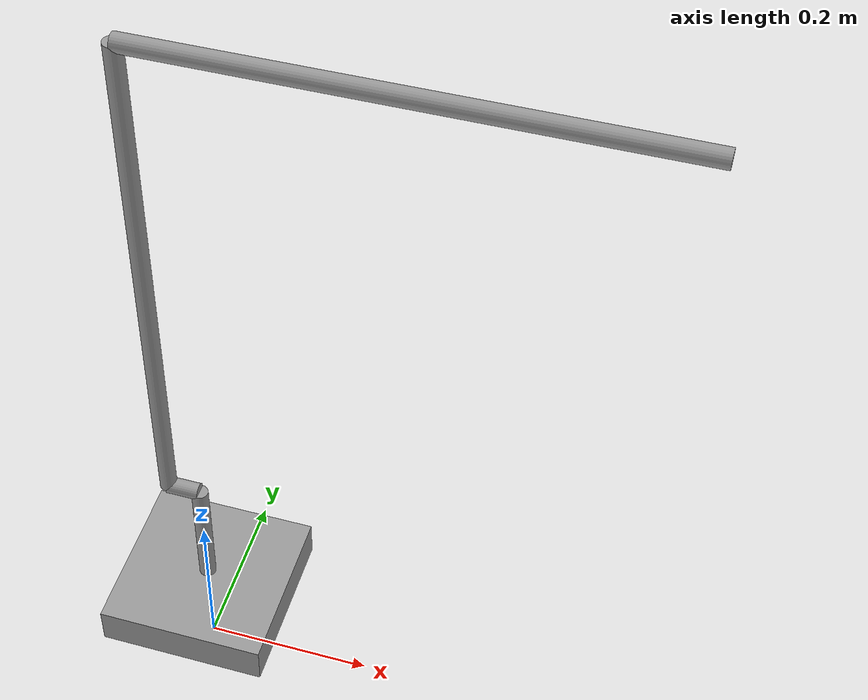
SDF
<?xml version='1.0'?>
<sdf version='1.6'>
  <model name='Robot_Arm'>
    <link name='arm_base'>
      <pose frame=''>0 0 0.1 0 -0 0</pose>
      <inertial>
        <mass>50</mass>
        <inertia>
          <ixx>0.166667</ixx>
          <ixy>0</ixy>
          <ixz>0</ixz>
          <iyy>0.166667</iyy>
          <iyz>0</iyz>
          <izz>0.166667</izz>
        </inertia>
        <pose frame=''>0 0 0 0 -0 0</pose>
      </inertial>
      <self_collide>0</self_collide>
      <kinematic>0</kinematic>
      <gravity>1</gravity>
      <visual name='visual'>
        <pose frame=''>0 0 0 0 -0 0</pose>
        <geometry>
          <box>
            <size>0.2 0.2 0.04699</size>
          </box>
        </geometry>
        <material>
          <lighting>1</lighting>
          <script>
            <uri>file://media/materials/scripts/gazebo.material</uri>
            <name>Gazebo/Grey</name>
          </script>
          <ambient>0.3 0.3 0.3 1</ambient>
          <diffuse>0.7 0.7 0.7 1</diffuse>
          <specular>0.01 0.01 0.01 1</specular>
          <emissive>0 0 0 1</emissive>
          <shader type='vertex'>
            <normal_map>__default__</normal_map>
          </shader>
        </material>
        <cast_shadows>1</cast_shadows>
        <transparency>0</transparency>
      </visual>
      <collision name='collision'>
        <laser_retro>0</laser_retro>
        <max_contacts>10</max_contacts>
        <pose frame=''>0 0 0 0 -0 0</pose>
        <geometry>
          <box>
            <size>0.2 0.2 0.04699</size>
          </box>
        </geometry>
        <surface>
          <friction>
            <ode>
              <mu>1</mu>
              <mu2>1</mu2>
              <fdir1>0 0 0</fdir1>
              <slip1>0</slip1>
              <slip2>0</slip2>
            </ode>
            <torsional>
              <coefficient>1</coefficient>
              <patch_radius>0</patch_radius>
              <surface_radius>0</surface_radius>
              <use_patch_radius>1</use_patch_radius>
              <ode>
                <slip>0</slip>
              </ode>
            </torsional>
          </friction>
          <bounce>
            <restitution_coefficient>0</restitution_coefficient>
            <threshold>1e+06</threshold>
          </bounce>
          <contact>
            <collide_without_contact>0</collide_without_contact>
            <collide_without_contact_bitmask>1</collide_without_contact_bitmask>
            <collide_bitmask>1</collide_bitmask>
            <ode>
              <soft_cfm>0</soft_cfm>
              <soft_erp>0.2</soft_erp>
              <kp>1e+13</kp>
              <kd>1</kd>
              <max_vel>0.01</max_vel>
              <min_depth>0</min_depth>
            </ode>
            <bullet>
              <split_impulse>1</split_impulse>
              <split_impulse_penetration_threshold>-0.01</split_impulse_penetration_threshold>
              <soft_cfm>0</soft_cfm>
              <soft_erp>0.2</soft_erp>
              <kp>1e+13</kp>
              <kd>1</kd>
            </bullet>
          </contact>
        </surface>
      </collision>
    </link>
    <link name='back_arm'>
      <pose frame=''>-0.0381 0 0.583997 0 -0 0</pose>
      <inertial>
        <mass>1</mass>
        <inertia>
          <ixx>0.145833</ixx>
          <ixy>0</ixy>
          <ixz>0</ixz>
          <iyy>0.145833</iyy>
          <iyz>0</iyz>
          <izz>0.125</izz>
        </inertia>
        <pose frame=''>0 0 0 0 -0 0</pose>
      </inertial>
      <self_collide>0</self_collide>
      <kinematic>0</kinematic>
      <visual name='visual'>
        <pose frame=''>0 0 0 0 -0 0</pose>
        <geometry>
          <cylinder>
            <radius>0.01</radius>
            <length>0.6223</length>
          </cylinder>
        </geometry>
        <material>
          <lighting>1</lighting>
          <script>
            <uri>file://media/materials/scripts/gazebo.material</uri>
            <name>Gazebo/Grey</name>
          </script>
          <ambient>0.3 0.3 0.3 1</ambient>
          <diffuse>0.7 0.7 0.7 1</diffuse>
          <specular>0.01 0.01 0.01 1</specular>
          <emissive>0 0 0 1</emissive>
          <shader type='vertex'>
            <normal_map>__default__</normal_map>
          </shader>
        </material>
        <cast_shadows>1</cast_shadows>
        <transparency>0</transparency>
      </visual>
      <collision name='collision'>
        <laser_retro>0</laser_retro>
        <max_contacts>10</max_contacts>
        <pose frame=''>0 0 0 0 -0 0</pose>
        <geometry>
          <cylinder>
            <radius>0.01</radius>
            <length>0.6223</length>
          </cylinder>
        </geometry>
        <surface>
          <friction>
            <ode>
              <mu>1</mu>
              <mu2>1</mu2>
              <fdir1>0 0 0</fdir1>
              <slip1>0</slip1>
              <slip2>0</slip2>
            </ode>
            <torsional>
              <coefficient>1</coefficient>
              <patch_radius>0</patch_radius>
              <surface_radius>0</surface_radius>
              <use_patch_radius>1</use_patch_radius>
              <ode>
                <slip>0</slip>
              </ode>
            </torsional>
          </friction>
          <bounce>
            <restitution_coefficient>0</restitution_coefficient>
            <threshold>1e+06</threshold>
          </bounce>
          <contact>
            <collide_without_contact>0</collide_without_contact>
            <collide_without_contact_bitmask>1</collide_without_contact_bitmask>
            <collide_bitmask>1</collide_bitmask>
            <ode>
              <soft_cfm>0</soft_cfm>
              <soft_erp>0.2</soft_erp>
              <kp>1e+13</kp>
              <kd>1</kd>
              <max_vel>0.01</max_vel>
              <min_depth>0</min_depth>
            </ode>
            <bullet>
              <split_impulse>1</split_impulse>
              <split_impulse_penetration_threshold>-0.01</split_impulse_penetration_threshold>
              <soft_cfm>0</soft_cfm>
              <soft_erp>0.2</soft_erp>
              <kp>1e+13</kp>
              <kd>1</kd>
            </bullet>
          </contact>
        </surface>
      </collision>
    </link>
    <link name='center_shaft'>
      <pose frame=''>0 0 0.198171 0 -0 0</pose>
      <inertial>
        <mass>1</mass>
        <inertia>
          <ixx>0.145833</ixx>
          <ixy>0</ixy>
          <ixz>0</ixz>
          <iyy>0.145833</iyy>
          <iyz>0</iyz>
          <izz>0.125</izz>
        </inertia>
        <pose frame=''>0 0 0 0 -0 0</pose>
      </inertial>
      <self_collide>0</self_collide>
      <kinematic>0</kinematic>
      <visual name='visual'>
        <pose frame=''>0 0 0 0 -0 0</pose>
        <geometry>
          <cylinder>
            <radius>0.01</radius>
            <length>0.149352</length>
          </cylinder>
        </geometry>
        <material>
          <lighting>1</lighting>
          <script>
            <uri>file://media/materials/scripts/gazebo.material</uri>
            <name>Gazebo/Grey</name>
          </script>
          <ambient>0.3 0.3 0.3 1</ambient>
          <diffuse>0.7 0.7 0.7 1</diffuse>
          <specular>0.01 0.01 0.01 1</specular>
          <emissive>0 0 0 1</emissive>
          <shader type='vertex'>
            <normal_map>__default__</normal_map>
          </shader>
        </material>
        <cast_shadows>1</cast_shadows>
        <transparency>0</transparency>
      </visual>
      <collision name='collision'>
        <laser_retro>0</laser_retro>
        <max_contacts>10</max_contacts>
        <pose frame=''>0 0 0 0 -0 0</pose>
        <geometry>
          <cylinder>
            <radius>0.01</radius>
            <length>0.149352</length>
          </cylinder>
        </geometry>
        <surface>
          <friction>
            <ode>
              <mu>1</mu>
              <mu2>1</mu2>
              <fdir1>0 0 0</fdir1>
              <slip1>0</slip1>
              <slip2>0</slip2>
            </ode>
            <torsional>
              <coefficient>1</coefficient>
              <patch_radius>0</patch_radius>
              <surface_radius>0</surface_radius>
              <use_patch_radius>1</use_patch_radius>
              <ode>
                <slip>0</slip>
              </ode>
            </torsional>
          </friction>
          <bounce>
            <restitution_coefficient>0</restitution_coefficient>
            <threshold>1e+06</threshold>
          </bounce>
          <contact>
            <collide_without_contact>0</collide_without_contact>
            <collide_without_contact_bitmask>1</collide_without_contact_bitmask>
            <collide_bitmask>1</collide_bitmask>
            <ode>
              <soft_cfm>0</soft_cfm>
              <soft_erp>0.2</soft_erp>
              <kp>1e+13</kp>
              <kd>1</kd>
              <max_vel>0.01</max_vel>
              <min_depth>0</min_depth>
            </ode>
            <bullet>
              <split_impulse>1</split_impulse>
              <split_impulse_penetration_threshold>-0.01</split_impulse_penetration_threshold>
              <soft_cfm>0</soft_cfm>
              <soft_erp>0.2</soft_erp>
              <kp>1e+13</kp>
              <kd>1</kd>
            </bullet>
          </contact>
        </surface>
      </collision>
    </link>
    <link name='center_shaft_offset'>
      <pose frame=''>-0.01905 0 0.272847 3.14159 1.57079 3.14159</pose>
      <inertial>
        <mass>1</mass>
        <inertia>
          <ixx>0.145833</ixx>
          <ixy>0</ixy>
          <ixz>0</ixz>
          <iyy>0.145833</iyy>
          <iyz>0</iyz>
          <izz>0.125</izz>
        </inertia>
        <pose frame=''>0 0 0 0 -0 0</pose>
      </inertial>
      <self_collide>0</self_collide>
      <kinematic>0</kinematic>
      <visual name='visual'>
        <pose frame=''>0 0 0 0 -0 0</pose>
        <geometry>
          <cylinder>
            <radius>0.01</radius>
            <length>0.0381</length>
          </cylinder>
        </geometry>
        <material>
          <lighting>1</lighting>
          <script>
            <uri>file://media/materials/scripts/gazebo.material</uri>
            <name>Gazebo/Grey</name>
          </script>
          <ambient>0.3 0.3 0.3 1</ambient>
          <diffuse>0.7 0.7 0.7 1</diffuse>
          <specular>0.01 0.01 0.01 1</specular>
          <emissive>0 0 0 1</emissive>
          <shader type='vertex'>
            <normal_map>__default__</normal_map>
          </shader>
        </material>
        <cast_shadows>1</cast_shadows>
        <transparency>0</transparency>
      </visual>
      <collision name='collision'>
        <laser_retro>0</laser_retro>
        <max_contacts>10</max_contacts>
        <pose frame=''>0 0 0 0 -0 0</pose>
        <geometry>
          <cylinder>
            <radius>0.01</radius>
            <length>0.0381</length>
          </cylinder>
        </geometry>
        <surface>
          <friction>
            <ode>
              <mu>1</mu>
              <mu2>1</mu2>
              <fdir1>0 0 0</fdir1>
              <slip1>0</slip1>
              <slip2>0</slip2>
            </ode>
            <torsional>
              <coefficient>1</coefficient>
              <patch_radius>0</patch_radius>
              <surface_radius>0</surface_radius>
              <use_patch_radius>1</use_patch_radius>
              <ode>
                <slip>0</slip>
              </ode>
            </torsional>
          </friction>
          <bounce>
            <restitution_coefficient>0</restitution_coefficient>
            <threshold>1e+06</threshold>
          </bounce>
          <contact>
            <collide_without_contact>0</collide_without_contact>
            <collide_without_contact_bitmask>1</collide_without_contact_bitmask>
            <collide_bitmask>1</collide_bitmask>
            <ode>
              <soft_cfm>0</soft_cfm>
              <soft_erp>0.2</soft_erp>
              <kp>1e+13</kp>
              <kd>1</kd>
              <max_vel>0.01</max_vel>
              <min_depth>0</min_depth>
            </ode>
            <bullet>
              <split_impulse>1</split_impulse>
              <split_impulse_penetration_threshold>-0.01</split_impulse_penetration_threshold>
              <soft_cfm>0</soft_cfm>
              <soft_erp>0.2</soft_erp>
              <kp>1e+13</kp>
              <kd>1</kd>
            </bullet>
          </contact>
        </surface>
      </collision>
    </link>
    <link name='forearm'>
      <pose frame=''>0.2413 0 0.895147 3.14159 1.57079 3.14159</pose>
      <inertial>
        <mass>1</mass>
        <inertia>
          <ixx>0.145833</ixx>
          <ixy>0</ixy>
          <ixz>0</ixz>
          <iyy>0.145833</iyy>
          <iyz>0</iyz>
          <izz>0.125</izz>
        </inertia>
        <pose frame=''>0 0 0 0 -0 0</pose>
      </inertial>
      <self_collide>0</self_collide>
      <kinematic>0</kinematic>
      <visual name='visual'>
        <pose frame=''>0 0 0 0 -0 0</pose>
        <geometry>
          <cylinder>
            <radius>0.01</radius>
            <length>0.5588</length>
          </cylinder>
        </geometry>
        <material>
          <lighting>1</lighting>
          <script>
            <uri>file://media/materials/scripts/gazebo.material</uri>
            <name>Gazebo/Grey</name>
          </script>
          <ambient>0.3 0.3 0.3 1</ambient>
          <diffuse>0.7 0.7 0.7 1</diffuse>
          <specular>0.01 0.01 0.01 1</specular>
          <emissive>0 0 0 1</emissive>
          <shader type='vertex'>
            <normal_map>__default__</normal_map>
          </shader>
        </material>
        <cast_shadows>1</cast_shadows>
        <transparency>0</transparency>
      </visual>
      <collision name='collision'>
        <laser_retro>0</laser_retro>
        <max_contacts>10</max_contacts>
        <pose frame=''>0 0 0 0 -0 0</pose>
        <geometry>
          <cylinder>
            <radius>0.01</radius>
            <length>0.5588</length>
          </cylinder>
        </geometry>
        <surface>
          <friction>
            <ode>
              <mu>1</mu>
              <mu2>1</mu2>
              <fdir1>0 0 0</fdir1>
              <slip1>0</slip1>
              <slip2>0</slip2>
            </ode>
            <torsional>
              <coefficient>1</coefficient>
              <patch_radius>0</patch_radius>
              <surface_radius>0</surface_radius>
              <use_patch_radius>1</use_patch_radius>
              <ode>
                <slip>0</slip>
              </ode>
            </torsional>
          </friction>
          <bounce>
            <restitution_coefficient>0</restitution_coefficient>
            <threshold>1e+06</threshold>
          </bounce>
          <contact>
            <collide_without_contact>0</collide_without_contact>
            <collide_without_contact_bitmask>1</collide_without_contact_bitmask>
            <collide_bitmask>1</collide_bitmask>
            <ode>
              <soft_cfm>0</soft_cfm>
              <soft_erp>0.2</soft_erp>
              <kp>1e+13</kp>
              <kd>1</kd>
              <max_vel>0.01</max_vel>
              <min_depth>0</min_depth>
            </ode>
            <bullet>
              <split_impulse>1</split_impulse>
              <split_impulse_penetration_threshold>-0.01</split_impulse_penetration_threshold>
              <soft_cfm>0</soft_cfm>
              <soft_erp>0.2</soft_erp>
              <kp>1e+13</kp>
              <kd>1</kd>
            </bullet>
          </contact>
        </surface>
      </collision>
    </link>
    <joint name='back_arm_forearm' type='revolute'>
      <parent>back_arm</parent>
      <child>forearm</child>
      <pose frame=''>0 0 -0.2794 0 -0 0</pose>
      <axis>
        <xyz>0 1 0</xyz>
        <use_parent_model_frame>0</use_parent_model_frame>
        <limit>
          <lower>-0.785398</lower>
          <upper>0.785398</upper>
          <effort>-1</effort>
          <velocity>-1</velocity>
        </limit>
        <dynamics>
          <spring_reference>0</spring_reference>
          <spring_stiffness>0</spring_stiffness>
          <damping>0</damping>
          <friction>0</friction>
        </dynamics>
      </axis>
      <physics>
        <ode>
          <limit>
            <cfm>0</cfm>
            <erp>0.2</erp>
          </limit>
          <suspension>
            <cfm>0</cfm>
            <erp>0.2</erp>
          </suspension>
        </ode>
      </physics>
    </joint>
    <joint name='base_center_shaft' type='revolute'>
      <parent>arm_base</parent>
      <child>center_shaft</child>
      <pose frame=''>0 0 -0.074676 0 -0 0</pose>
      <axis>
        <xyz>0 0 1</xyz>
        <use_parent_model_frame>0</use_parent_model_frame>
        <limit>
          <lower>-1.79769e+308</lower>
          <upper>1.79769e+308</upper>
          <effort>-1</effort>
          <velocity>-1</velocity>
        </limit>
        <dynamics>
          <spring_reference>0</spring_reference>
          <spring_stiffness>0</spring_stiffness>
          <damping>0</damping>
          <friction>0</friction>
        </dynamics>
      </axis>
      <physics>
        <ode>
          <limit>
            <cfm>0</cfm>
            <erp>0.2</erp>
          </limit>
          <suspension>
            <cfm>0</cfm>
            <erp>0.2</erp>
          </suspension>
        </ode>
      </physics>
    </joint>
    <joint name='center_shaft_backarm' type='revolute'>
      <parent>center_shaft_offset</parent>
      <child>back_arm</child>
      <pose frame=''>0 0 -0.31115 0 -0 0</pose>
      <axis>
        <xyz>0 1 0</xyz>
        <use_parent_model_frame>0</use_parent_model_frame>
        <limit>
          <lower>-0.785398</lower>
          <upper>0.785398</upper>
          <effort>-1</effort>
          <velocity>-1</velocity>
        </limit>
        <dynamics>
          <spring_reference>0</spring_reference>
          <spring_stiffness>0</spring_stiffness>
          <damping>0</damping>
          <friction>0</friction>
        </dynamics>
      </axis>
      <physics>
        <ode>
          <limit>
            <cfm>0</cfm>
            <erp>0.2</erp>
          </limit>
          <suspension>
            <cfm>0</cfm>
            <erp>0.2</erp>
          </suspension>
        </ode>
      </physics>
    </joint>
    <joint name='center_shaft_with_offset' type='fixed'>
      <parent>center_shaft</parent>
      <child>center_shaft_offset</child>
      <pose frame=''>0 0 0 0 -0 0</pose>
      <physics>
        <ode>
          <limit>
            <cfm>0</cfm>
            <erp>0.2</erp>
          </limit>
          <suspension>
            <cfm>0</cfm>
            <erp>0.2</erp>
          </suspension>
        </ode>
      </physics>
    </joint>
    <static>0</static>
    <allow_auto_disable>1</allow_auto_disable>
  </model>
</sdf>
